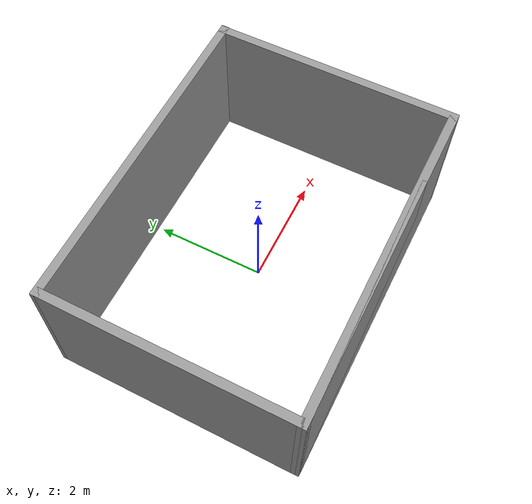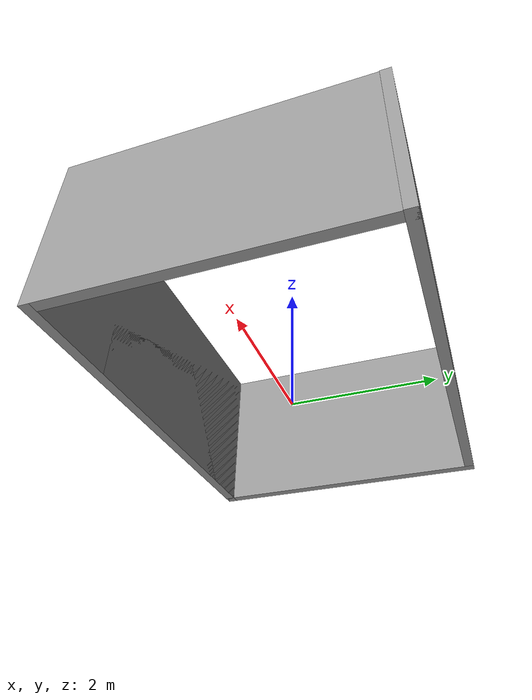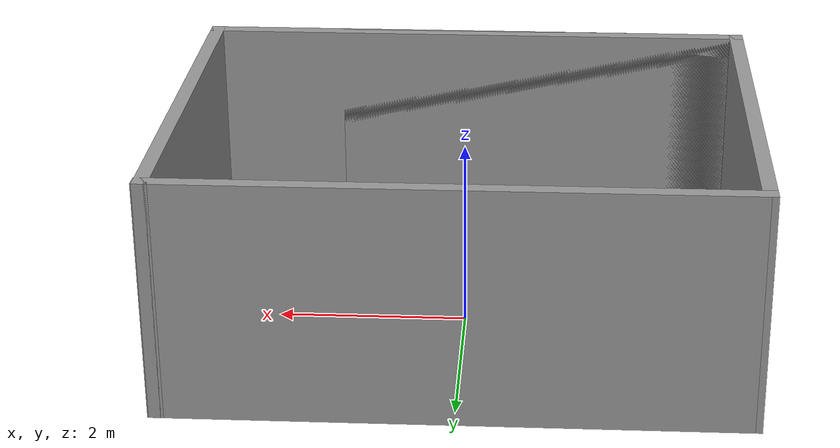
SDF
<?xml version='1.0'?>
<sdf version='1.6'>
  <model name='room20x15'>
    <link name='Wall_0'>
      <pose frame=''>-0.002755 -2.175 0 0 -0 0</pose>
      <self_collide>0</self_collide>
      <enable_wind>0</enable_wind>
      <kinematic>0</kinematic>
      <visual name='Wall_0_Visual'>
        <pose frame=''>0 0 1.25 0 -0 0</pose>
        <geometry>
          <box>
            <size>6 0.15 2.5</size>
          </box>
        </geometry>
        <material>
          <script>
            <uri>file://media/materials/scripts/gazebo.material</uri>
            <name>Gazebo/Grey</name>
          </script>
          <ambient>1 1 1 1</ambient>
        </material>
        <meta>
          <layer>0</layer>
        </meta>
        <transparency>0</transparency>
        <cast_shadows>1</cast_shadows>
      </visual>
      <collision name='Wall_0_Collision'>
        <laser_retro>0</laser_retro>
        <max_contacts>10</max_contacts>
        <pose frame=''>0 0 1.25 0 -0 0</pose>
        <geometry>
          <box>
            <size>6 0.15 2.5</size>
          </box>
        </geometry>
        <surface>
          <friction>
            <ode>
              <mu>1</mu>
              <mu2>1</mu2>
              <fdir1>0 0 0</fdir1>
              <slip1>0</slip1>
              <slip2>0</slip2>
            </ode>
            <torsional>
              <coefficient>1</coefficient>
              <patch_radius>0</patch_radius>
              <surface_radius>0</surface_radius>
              <use_patch_radius>1</use_patch_radius>
              <ode>
                <slip>0</slip>
              </ode>
            </torsional>
          </friction>
          <bounce>
            <restitution_coefficient>0</restitution_coefficient>
            <threshold>1e+06</threshold>
          </bounce>
          <contact>
            <collide_without_contact>0</collide_without_contact>
            <collide_without_contact_bitmask>1</collide_without_contact_bitmask>
            <collide_bitmask>1</collide_bitmask>
            <ode>
              <soft_cfm>0</soft_cfm>
              <soft_erp>0.2</soft_erp>
              <kp>1e+13</kp>
              <kd>1</kd>
              <max_vel>0.01</max_vel>
              <min_depth>0</min_depth>
            </ode>
            <bullet>
              <split_impulse>1</split_impulse>
              <split_impulse_penetration_threshold>-0.01</split_impulse_penetration_threshold>
              <soft_cfm>0</soft_cfm>
              <soft_erp>0.2</soft_erp>
              <kp>1e+13</kp>
              <kd>1</kd>
            </bullet>
          </contact>
        </surface>
      </collision>
    </link>
    <link name='Wall_1'>
      <pose frame=''>2.92225 0 0 0 -0 1.5708</pose>
      <self_collide>0</self_collide>
      <enable_wind>0</enable_wind>
      <kinematic>0</kinematic>
      <visual name='Wall_1_Visual'>
        <pose frame=''>0 0 1.25 0 -0 0</pose>
        <geometry>
          <box>
            <size>4.5 0.15 2.5</size>
          </box>
        </geometry>
        <material>
          <script>
            <uri>file://media/materials/scripts/gazebo.material</uri>
            <name>Gazebo/Grey</name>
          </script>
          <ambient>1 1 1 1</ambient>
        </material>
        <meta>
          <layer>0</layer>
        </meta>
        <transparency>0</transparency>
        <cast_shadows>1</cast_shadows>
      </visual>
      <collision name='Wall_1_Collision'>
        <laser_retro>0</laser_retro>
        <max_contacts>10</max_contacts>
        <pose frame=''>0 0 1.25 0 -0 0</pose>
        <geometry>
          <box>
            <size>4.5 0.15 2.5</size>
          </box>
        </geometry>
        <surface>
          <friction>
            <ode>
              <mu>1</mu>
              <mu2>1</mu2>
              <fdir1>0 0 0</fdir1>
              <slip1>0</slip1>
              <slip2>0</slip2>
            </ode>
            <torsional>
              <coefficient>1</coefficient>
              <patch_radius>0</patch_radius>
              <surface_radius>0</surface_radius>
              <use_patch_radius>1</use_patch_radius>
              <ode>
                <slip>0</slip>
              </ode>
            </torsional>
          </friction>
          <bounce>
            <restitution_coefficient>0</restitution_coefficient>
            <threshold>1e+06</threshold>
          </bounce>
          <contact>
            <collide_without_contact>0</collide_without_contact>
            <collide_without_contact_bitmask>1</collide_without_contact_bitmask>
            <collide_bitmask>1</collide_bitmask>
            <ode>
              <soft_cfm>0</soft_cfm>
              <soft_erp>0.2</soft_erp>
              <kp>1e+13</kp>
              <kd>1</kd>
              <max_vel>0.01</max_vel>
              <min_depth>0</min_depth>
            </ode>
            <bullet>
              <split_impulse>1</split_impulse>
              <split_impulse_penetration_threshold>-0.01</split_impulse_penetration_threshold>
              <soft_cfm>0</soft_cfm>
              <soft_erp>0.2</soft_erp>
              <kp>1e+13</kp>
              <kd>1</kd>
            </bullet>
          </contact>
        </surface>
      </collision>
    </link>
    <link name='Wall_2'>
      <pose frame=''>2.92725 2.175 0 0 -0 0</pose>
      <self_collide>0</self_collide>
      <enable_wind>0</enable_wind>
      <kinematic>0</kinematic>
      <visual name='Wall_2_Visual'>
        <pose frame=''>0 0 1.25 0 -0 0</pose>
        <geometry>
          <box>
            <size>0.16 0.15 2.5</size>
          </box>
        </geometry>
        <material>
          <script>
            <uri>file://media/materials/scripts/gazebo.material</uri>
            <name>Gazebo/Grey</name>
          </script>
          <ambient>1 1 1 1</ambient>
        </material>
        <meta>
          <layer>0</layer>
        </meta>
        <transparency>0</transparency>
        <cast_shadows>1</cast_shadows>
      </visual>
      <collision name='Wall_2_Collision'>
        <laser_retro>0</laser_retro>
        <max_contacts>10</max_contacts>
        <pose frame=''>0 0 1.25 0 -0 0</pose>
        <geometry>
          <box>
            <size>0.16 0.15 2.5</size>
          </box>
        </geometry>
        <surface>
          <friction>
            <ode>
              <mu>1</mu>
              <mu2>1</mu2>
              <fdir1>0 0 0</fdir1>
              <slip1>0</slip1>
              <slip2>0</slip2>
            </ode>
            <torsional>
              <coefficient>1</coefficient>
              <patch_radius>0</patch_radius>
              <surface_radius>0</surface_radius>
              <use_patch_radius>1</use_patch_radius>
              <ode>
                <slip>0</slip>
              </ode>
            </torsional>
          </friction>
          <bounce>
            <restitution_coefficient>0</restitution_coefficient>
            <threshold>1e+06</threshold>
          </bounce>
          <contact>
            <collide_without_contact>0</collide_without_contact>
            <collide_without_contact_bitmask>1</collide_without_contact_bitmask>
            <collide_bitmask>1</collide_bitmask>
            <ode>
              <soft_cfm>0</soft_cfm>
              <soft_erp>0.2</soft_erp>
              <kp>1e+13</kp>
              <kd>1</kd>
              <max_vel>0.01</max_vel>
              <min_depth>0</min_depth>
            </ode>
            <bullet>
              <split_impulse>1</split_impulse>
              <split_impulse_penetration_threshold>-0.01</split_impulse_penetration_threshold>
              <soft_cfm>0</soft_cfm>
              <soft_erp>0.2</soft_erp>
              <kp>1e+13</kp>
              <kd>1</kd>
            </bullet>
          </contact>
        </surface>
      </collision>
    </link>
    <link name='Wall_3'>
      <pose frame=''>0.007245 2.175 0 0 -0 3.14159</pose>
      <self_collide>0</self_collide>
      <enable_wind>0</enable_wind>
      <kinematic>0</kinematic>
      <visual name='Wall_3_Visual'>
        <pose frame=''>0 0 1.25 0 -0 0</pose>
        <geometry>
          <box>
            <size>6 0.15 2.5</size>
          </box>
        </geometry>
        <material>
          <script>
            <uri>file://media/materials/scripts/gazebo.material</uri>
            <name>Gazebo/Grey</name>
          </script>
          <ambient>1 1 1 1</ambient>
        </material>
        <meta>
          <layer>0</layer>
        </meta>
        <transparency>0</transparency>
        <cast_shadows>1</cast_shadows>
      </visual>
      <collision name='Wall_3_Collision'>
        <laser_retro>0</laser_retro>
        <max_contacts>10</max_contacts>
        <pose frame=''>0 0 1.25 0 -0 0</pose>
        <geometry>
          <box>
            <size>6 0.15 2.5</size>
          </box>
        </geometry>
        <surface>
          <friction>
            <ode>
              <mu>1</mu>
              <mu2>1</mu2>
              <fdir1>0 0 0</fdir1>
              <slip1>0</slip1>
              <slip2>0</slip2>
            </ode>
            <torsional>
              <coefficient>1</coefficient>
              <patch_radius>0</patch_radius>
              <surface_radius>0</surface_radius>
              <use_patch_radius>1</use_patch_radius>
              <ode>
                <slip>0</slip>
              </ode>
            </torsional>
          </friction>
          <bounce>
            <restitution_coefficient>0</restitution_coefficient>
            <threshold>1e+06</threshold>
          </bounce>
          <contact>
            <collide_without_contact>0</collide_without_contact>
            <collide_without_contact_bitmask>1</collide_without_contact_bitmask>
            <collide_bitmask>1</collide_bitmask>
            <ode>
              <soft_cfm>0</soft_cfm>
              <soft_erp>0.2</soft_erp>
              <kp>1e+13</kp>
              <kd>1</kd>
              <max_vel>0.01</max_vel>
              <min_depth>0</min_depth>
            </ode>
            <bullet>
              <split_impulse>1</split_impulse>
              <split_impulse_penetration_threshold>-0.01</split_impulse_penetration_threshold>
              <soft_cfm>0</soft_cfm>
              <soft_erp>0.2</soft_erp>
              <kp>1e+13</kp>
              <kd>1</kd>
            </bullet>
          </contact>
        </surface>
      </collision>
    </link>
    <link name='Wall_4'>
      <pose frame=''>-2.92275 0 0 0 0 -1.57309</pose>
      <self_collide>0</self_collide>
      <enable_wind>0</enable_wind>
      <kinematic>0</kinematic>
      <visual name='Wall_4_Visual'>
        <pose frame=''>0 0 1.25 0 -0 0</pose>
        <geometry>
          <box>
            <size>4.5 0.15 2.5</size>
          </box>
        </geometry>
        <material>
          <script>
            <uri>file://media/materials/scripts/gazebo.material</uri>
            <name>Gazebo/Grey</name>
          </script>
          <ambient>1 1 1 1</ambient>
        </material>
        <meta>
          <layer>0</layer>
        </meta>
        <transparency>0</transparency>
        <cast_shadows>1</cast_shadows>
      </visual>
      <collision name='Wall_4_Collision'>
        <laser_retro>0</laser_retro>
        <max_contacts>10</max_contacts>
        <pose frame=''>0 0 1.25 0 -0 0</pose>
        <geometry>
          <box>
            <size>4.5 0.15 2.5</size>
          </box>
        </geometry>
        <surface>
          <friction>
            <ode>
              <mu>1</mu>
              <mu2>1</mu2>
              <fdir1>0 0 0</fdir1>
              <slip1>0</slip1>
              <slip2>0</slip2>
            </ode>
            <torsional>
              <coefficient>1</coefficient>
              <patch_radius>0</patch_radius>
              <surface_radius>0</surface_radius>
              <use_patch_radius>1</use_patch_radius>
              <ode>
                <slip>0</slip>
              </ode>
            </torsional>
          </friction>
          <bounce>
            <restitution_coefficient>0</restitution_coefficient>
            <threshold>1e+06</threshold>
          </bounce>
          <contact>
            <collide_without_contact>0</collide_without_contact>
            <collide_without_contact_bitmask>1</collide_without_contact_bitmask>
            <collide_bitmask>1</collide_bitmask>
            <ode>
              <soft_cfm>0</soft_cfm>
              <soft_erp>0.2</soft_erp>
              <kp>1e+13</kp>
              <kd>1</kd>
              <max_vel>0.01</max_vel>
              <min_depth>0</min_depth>
            </ode>
            <bullet>
              <split_impulse>1</split_impulse>
              <split_impulse_penetration_threshold>-0.01</split_impulse_penetration_threshold>
              <soft_cfm>0</soft_cfm>
              <soft_erp>0.2</soft_erp>
              <kp>1e+13</kp>
              <kd>1</kd>
            </bullet>
          </contact>
        </surface>
      </collision>
    </link>
    <link name='Wall_6'>
      <pose frame=''>-0.752755 -2.175 0 0 -0 0</pose>
      <self_collide>0</self_collide>
      <enable_wind>0</enable_wind>
      <kinematic>0</kinematic>
      <visual name='Wall_6_Visual'>
        <pose frame=''>0 0 1.25 0 -0 0</pose>
        <geometry>
          <box>
            <size>4.5 0.15 2.5</size>
          </box>
        </geometry>
        <material>
          <script>
            <uri>file://media/materials/scripts/gazebo.material</uri>
            <name>Gazebo/Grey</name>
          </script>
          <ambient>1 1 1 1</ambient>
        </material>
        <meta>
          <layer>0</layer>
        </meta>
        <transparency>0</transparency>
        <cast_shadows>1</cast_shadows>
      </visual>
      <collision name='Wall_6_Collision'>
        <laser_retro>0</laser_retro>
        <max_contacts>10</max_contacts>
        <pose frame=''>0 0 1.25 0 -0 0</pose>
        <geometry>
          <box>
            <size>4.5 0.15 2.5</size>
          </box>
        </geometry>
        <surface>
          <friction>
            <ode>
              <mu>1</mu>
              <mu2>1</mu2>
              <fdir1>0 0 0</fdir1>
              <slip1>0</slip1>
              <slip2>0</slip2>
            </ode>
            <torsional>
              <coefficient>1</coefficient>
              <patch_radius>0</patch_radius>
              <surface_radius>0</surface_radius>
              <use_patch_radius>1</use_patch_radius>
              <ode>
                <slip>0</slip>
              </ode>
            </torsional>
          </friction>
          <bounce>
            <restitution_coefficient>0</restitution_coefficient>
            <threshold>1e+06</threshold>
          </bounce>
          <contact>
            <collide_without_contact>0</collide_without_contact>
            <collide_without_contact_bitmask>1</collide_without_contact_bitmask>
            <collide_bitmask>1</collide_bitmask>
            <ode>
              <soft_cfm>0</soft_cfm>
              <soft_erp>0.2</soft_erp>
              <kp>1e+13</kp>
              <kd>1</kd>
              <max_vel>0.01</max_vel>
              <min_depth>0</min_depth>
            </ode>
            <bullet>
              <split_impulse>1</split_impulse>
              <split_impulse_penetration_threshold>-0.01</split_impulse_penetration_threshold>
              <soft_cfm>0</soft_cfm>
              <soft_erp>0.2</soft_erp>
              <kp>1e+13</kp>
              <kd>1</kd>
            </bullet>
          </contact>
        </surface>
      </collision>
    </link>
    <static>1</static>
    <allow_auto_disable>1</allow_auto_disable>
  </model>
</sdf>
